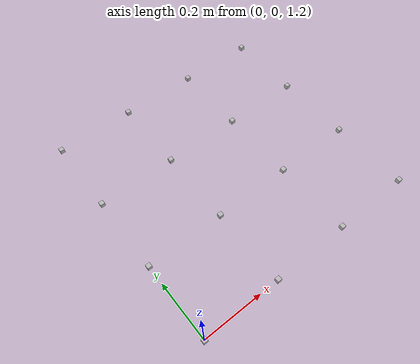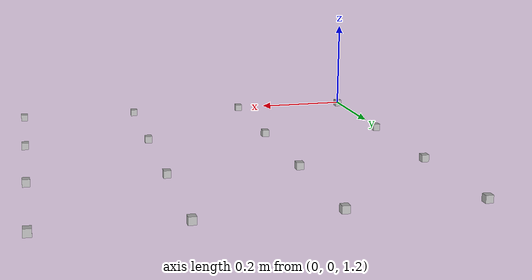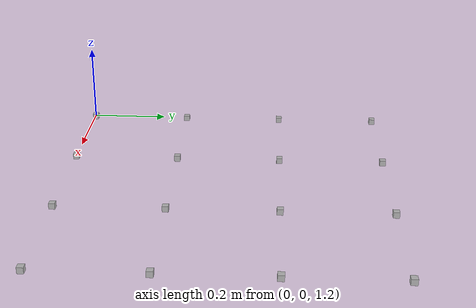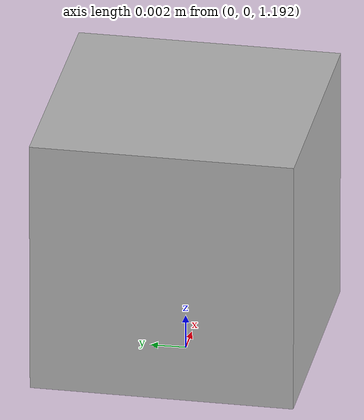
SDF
<sdf version="1.7">
  <model name="spring_damper_mesh">
    <static>false</static>
    <link name="mass_x0_y0">
      <pose>0.0 0.0 1.2 0 0 0</pose>
      <inertial>
        <mass>0.13125</mass>
        <inertia>
          <ixx>1e-5</ixx>
          <ixy>0</ixy>
          <ixz>0</ixz>
          <iyy>1e-5</iyy>
          <iyz>0</iyz>
          <izz>1e-5</izz>
        </inertia>
      </inertial>
      <collision name="collision_x0_y0">
        <geometry>
          <sphere>
            <radius>0.001</radius>
          </sphere>
        </geometry>
      </collision>
      <visual name="visual_x0_y0">
        <geometry>
          <box>
            <size>0.015 0.015 0.015</size>
          </box>
        </geometry>
      </visual>
    </link>
    <link name="mass_x1_y0">
      <pose>0.26666666666666666 0.0 1.2 0 0 0</pose>
      <inertial>
        <mass>0.13125</mass>
        <inertia>
          <ixx>1e-5</ixx>
          <ixy>0</ixy>
          <ixz>0</ixz>
          <iyy>1e-5</iyy>
          <iyz>0</iyz>
          <izz>1e-5</izz>
        </inertia>
      </inertial>
      <collision name="collision_x1_y0">
        <geometry>
          <sphere>
            <radius>0.001</radius>
          </sphere>
        </geometry>
      </collision>
      <visual name="visual_x1_y0">
        <geometry>
          <box>
            <size>0.015 0.015 0.015</size>
          </box>
        </geometry>
      </visual>
    </link>
    <link name="mass_x2_y0">
      <pose>0.5333333333333333 0.0 1.2 0 0 0</pose>
      <inertial>
        <mass>0.13125</mass>
        <inertia>
          <ixx>1e-5</ixx>
          <ixy>0</ixy>
          <ixz>0</ixz>
          <iyy>1e-5</iyy>
          <iyz>0</iyz>
          <izz>1e-5</izz>
        </inertia>
      </inertial>
      <collision name="collision_x2_y0">
        <geometry>
          <sphere>
            <radius>0.001</radius>
          </sphere>
        </geometry>
      </collision>
      <visual name="visual_x2_y0">
        <geometry>
          <box>
            <size>0.015 0.015 0.015</size>
          </box>
        </geometry>
      </visual>
    </link>
    <link name="mass_x3_y0">
      <pose>0.8 0.0 1.2 0 0 0</pose>
      <inertial>
        <mass>0.13125</mass>
        <inertia>
          <ixx>1e-5</ixx>
          <ixy>0</ixy>
          <ixz>0</ixz>
          <iyy>1e-5</iyy>
          <iyz>0</iyz>
          <izz>1e-5</izz>
        </inertia>
      </inertial>
      <collision name="collision_x3_y0">
        <geometry>
          <sphere>
            <radius>0.001</radius>
          </sphere>
        </geometry>
      </collision>
      <visual name="visual_x3_y0">
        <geometry>
          <box>
            <size>0.015 0.015 0.015</size>
          </box>
        </geometry>
      </visual>
    </link>
    <link name="mass_x0_y1">
      <pose>0.0 0.26666666666666666 1.2 0 0 0</pose>
      <inertial>
        <mass>0.13125</mass>
        <inertia>
          <ixx>1e-5</ixx>
          <ixy>0</ixy>
          <ixz>0</ixz>
          <iyy>1e-5</iyy>
          <iyz>0</iyz>
          <izz>1e-5</izz>
        </inertia>
      </inertial>
      <collision name="collision_x0_y1">
        <geometry>
          <sphere>
            <radius>0.001</radius>
          </sphere>
        </geometry>
      </collision>
      <visual name="visual_x0_y1">
        <geometry>
          <box>
            <size>0.015 0.015 0.015</size>
          </box>
        </geometry>
      </visual>
    </link>
    <link name="mass_x1_y1">
      <pose>0.26666666666666666 0.26666666666666666 1.2 0 0 0</pose>
      <inertial>
        <mass>0.13125</mass>
        <inertia>
          <ixx>1e-5</ixx>
          <ixy>0</ixy>
          <ixz>0</ixz>
          <iyy>1e-5</iyy>
          <iyz>0</iyz>
          <izz>1e-5</izz>
        </inertia>
      </inertial>
      <collision name="collision_x1_y1">
        <geometry>
          <sphere>
            <radius>0.001</radius>
          </sphere>
        </geometry>
      </collision>
      <visual name="visual_x1_y1">
        <geometry>
          <box>
            <size>0.015 0.015 0.015</size>
          </box>
        </geometry>
      </visual>
    </link>
    <link name="mass_x2_y1">
      <pose>0.5333333333333333 0.26666666666666666 1.2 0 0 0</pose>
      <inertial>
        <mass>0.13125</mass>
        <inertia>
          <ixx>1e-5</ixx>
          <ixy>0</ixy>
          <ixz>0</ixz>
          <iyy>1e-5</iyy>
          <iyz>0</iyz>
          <izz>1e-5</izz>
        </inertia>
      </inertial>
      <collision name="collision_x2_y1">
        <geometry>
          <sphere>
            <radius>0.001</radius>
          </sphere>
        </geometry>
      </collision>
      <visual name="visual_x2_y1">
        <geometry>
          <box>
            <size>0.015 0.015 0.015</size>
          </box>
        </geometry>
      </visual>
    </link>
    <link name="mass_x3_y1">
      <pose>0.8 0.26666666666666666 1.2 0 0 0</pose>
      <inertial>
        <mass>0.13125</mass>
        <inertia>
          <ixx>1e-5</ixx>
          <ixy>0</ixy>
          <ixz>0</ixz>
          <iyy>1e-5</iyy>
          <iyz>0</iyz>
          <izz>1e-5</izz>
        </inertia>
      </inertial>
      <collision name="collision_x3_y1">
        <geometry>
          <sphere>
            <radius>0.001</radius>
          </sphere>
        </geometry>
      </collision>
      <visual name="visual_x3_y1">
        <geometry>
          <box>
            <size>0.015 0.015 0.015</size>
          </box>
        </geometry>
      </visual>
    </link>
    <link name="mass_x0_y2">
      <pose>0.0 0.5333333333333333 1.2 0 0 0</pose>
      <inertial>
        <mass>0.13125</mass>
        <inertia>
          <ixx>1e-5</ixx>
          <ixy>0</ixy>
          <ixz>0</ixz>
          <iyy>1e-5</iyy>
          <iyz>0</iyz>
          <izz>1e-5</izz>
        </inertia>
      </inertial>
      <collision name="collision_x0_y2">
        <geometry>
          <sphere>
            <radius>0.001</radius>
          </sphere>
        </geometry>
      </collision>
      <visual name="visual_x0_y2">
        <geometry>
          <box>
            <size>0.015 0.015 0.015</size>
          </box>
        </geometry>
      </visual>
    </link>
    <link name="mass_x1_y2">
      <pose>0.26666666666666666 0.5333333333333333 1.2 0 0 0</pose>
      <inertial>
        <mass>0.13125</mass>
        <inertia>
          <ixx>1e-5</ixx>
          <ixy>0</ixy>
          <ixz>0</ixz>
          <iyy>1e-5</iyy>
          <iyz>0</iyz>
          <izz>1e-5</izz>
        </inertia>
      </inertial>
      <collision name="collision_x1_y2">
        <geometry>
          <sphere>
            <radius>0.001</radius>
          </sphere>
        </geometry>
      </collision>
      <visual name="visual_x1_y2">
        <geometry>
          <box>
            <size>0.015 0.015 0.015</size>
          </box>
        </geometry>
      </visual>
    </link>
    <link name="mass_x2_y2">
      <pose>0.5333333333333333 0.5333333333333333 1.2 0 0 0</pose>
      <inertial>
        <mass>0.13125</mass>
        <inertia>
          <ixx>1e-5</ixx>
          <ixy>0</ixy>
          <ixz>0</ixz>
          <iyy>1e-5</iyy>
          <iyz>0</iyz>
          <izz>1e-5</izz>
        </inertia>
      </inertial>
      <collision name="collision_x2_y2">
        <geometry>
          <sphere>
            <radius>0.001</radius>
          </sphere>
        </geometry>
      </collision>
      <visual name="visual_x2_y2">
        <geometry>
          <box>
            <size>0.015 0.015 0.015</size>
          </box>
        </geometry>
      </visual>
    </link>
    <link name="mass_x3_y2">
      <pose>0.8 0.5333333333333333 1.2 0 0 0</pose>
      <inertial>
        <mass>0.13125</mass>
        <inertia>
          <ixx>1e-5</ixx>
          <ixy>0</ixy>
          <ixz>0</ixz>
          <iyy>1e-5</iyy>
          <iyz>0</iyz>
          <izz>1e-5</izz>
        </inertia>
      </inertial>
      <collision name="collision_x3_y2">
        <geometry>
          <sphere>
            <radius>0.001</radius>
          </sphere>
        </geometry>
      </collision>
      <visual name="visual_x3_y2">
        <geometry>
          <box>
            <size>0.015 0.015 0.015</size>
          </box>
        </geometry>
      </visual>
    </link>
    <link name="mass_x0_y3">
      <pose>0.0 0.8 1.2 0 0 0</pose>
      <inertial>
        <mass>0.13125</mass>
        <inertia>
          <ixx>1e-5</ixx>
          <ixy>0</ixy>
          <ixz>0</ixz>
          <iyy>1e-5</iyy>
          <iyz>0</iyz>
          <izz>1e-5</izz>
        </inertia>
      </inertial>
      <collision name="collision_x0_y3">
        <geometry>
          <sphere>
            <radius>0.001</radius>
          </sphere>
        </geometry>
      </collision>
      <visual name="visual_x0_y3">
        <geometry>
          <box>
            <size>0.015 0.015 0.015</size>
          </box>
        </geometry>
      </visual>
    </link>
    <link name="mass_x1_y3">
      <pose>0.26666666666666666 0.8 1.2 0 0 0</pose>
      <inertial>
        <mass>0.13125</mass>
        <inertia>
          <ixx>1e-5</ixx>
          <ixy>0</ixy>
          <ixz>0</ixz>
          <iyy>1e-5</iyy>
          <iyz>0</iyz>
          <izz>1e-5</izz>
        </inertia>
      </inertial>
      <collision name="collision_x1_y3">
        <geometry>
          <sphere>
            <radius>0.001</radius>
          </sphere>
        </geometry>
      </collision>
      <visual name="visual_x1_y3">
        <geometry>
          <box>
            <size>0.015 0.015 0.015</size>
          </box>
        </geometry>
      </visual>
    </link>
    <link name="mass_x2_y3">
      <pose>0.5333333333333333 0.8 1.2 0 0 0</pose>
      <inertial>
        <mass>0.13125</mass>
        <inertia>
          <ixx>1e-5</ixx>
          <ixy>0</ixy>
          <ixz>0</ixz>
          <iyy>1e-5</iyy>
          <iyz>0</iyz>
          <izz>1e-5</izz>
        </inertia>
      </inertial>
      <collision name="collision_x2_y3">
        <geometry>
          <sphere>
            <radius>0.001</radius>
          </sphere>
        </geometry>
      </collision>
      <visual name="visual_x2_y3">
        <geometry>
          <box>
            <size>0.015 0.015 0.015</size>
          </box>
        </geometry>
      </visual>
    </link>
    <link name="mass_x3_y3">
      <pose>0.8 0.8 1.2 0 0 0</pose>
      <inertial>
        <mass>0.13125</mass>
        <inertia>
          <ixx>1e-5</ixx>
          <ixy>0</ixy>
          <ixz>0</ixz>
          <iyy>1e-5</iyy>
          <iyz>0</iyz>
          <izz>1e-5</izz>
        </inertia>
      </inertial>
      <collision name="collision_x3_y3">
        <geometry>
          <sphere>
            <radius>0.001</radius>
          </sphere>
        </geometry>
      </collision>
      <visual name="visual_x3_y3">
        <geometry>
          <box>
            <size>0.015 0.015 0.015</size>
          </box>
        </geometry>
      </visual>
    </link>
    <joint name="N_x0_y0_to_x1_y0" type="ball">
      <parent>mass_x0_y0</parent>
      <child>mass_x1_y0</child>
      <pose relative_to="mass_x1_y0">-0.13333333333333333 0 0 0 0 0</pose>
    </joint>
    <joint name="W_x0_y0_to_x0_y1" type="ball">
      <parent>mass_x0_y0</parent>
      <child>mass_x0_y1</child>
      <pose relative_to="mass_x0_y1">0 -0.13333333333333333 0 0 0 1.5707963267948966</pose>
    </joint>
    <joint name="N_x1_y0_to_x2_y0" type="ball">
      <parent>mass_x1_y0</parent>
      <child>mass_x2_y0</child>
      <pose relative_to="mass_x2_y0">-0.13333333333333333 0 0 0 0 0</pose>
    </joint>
    <joint name="W_x1_y0_to_x1_y1" type="ball">
      <parent>mass_x1_y0</parent>
      <child>mass_x1_y1</child>
      <pose relative_to="mass_x1_y1">0 -0.13333333333333333 0 0 0 1.5707963267948966</pose>
    </joint>
    <joint name="N_x2_y0_to_x3_y0" type="ball">
      <parent>mass_x2_y0</parent>
      <child>mass_x3_y0</child>
      <pose relative_to="mass_x3_y0">-0.13333333333333333 0 0 0 0 0</pose>
    </joint>
    <joint name="W_x2_y0_to_x2_y1" type="ball">
      <parent>mass_x2_y0</parent>
      <child>mass_x2_y1</child>
      <pose relative_to="mass_x2_y1">0 -0.13333333333333333 0 0 0 1.5707963267948966</pose>
    </joint>
    <joint name="W_x3_y0_to_x3_y1" type="ball">
      <parent>mass_x3_y0</parent>
      <child>mass_x3_y1</child>
      <pose relative_to="mass_x3_y1">0 -0.13333333333333333 0 0 0 1.5707963267948966</pose>
    </joint>
    <joint name="N_x0_y1_to_x1_y1" type="ball">
      <parent>mass_x0_y1</parent>
      <child>mass_x1_y1</child>
      <pose relative_to="mass_x1_y1">-0.13333333333333333 0 0 0 0 0</pose>
    </joint>
    <joint name="W_x0_y1_to_x0_y2" type="ball">
      <parent>mass_x0_y1</parent>
      <child>mass_x0_y2</child>
      <pose relative_to="mass_x0_y2">0 -0.13333333333333333 0 0 0 1.5707963267948966</pose>
    </joint>
    <joint name="N_x1_y1_to_x2_y1" type="ball">
      <parent>mass_x1_y1</parent>
      <child>mass_x2_y1</child>
      <pose relative_to="mass_x2_y1">-0.13333333333333333 0 0 0 0 0</pose>
    </joint>
    <joint name="W_x1_y1_to_x1_y2" type="ball">
      <parent>mass_x1_y1</parent>
      <child>mass_x1_y2</child>
      <pose relative_to="mass_x1_y2">0 -0.13333333333333333 0 0 0 1.5707963267948966</pose>
    </joint>
    <joint name="N_x2_y1_to_x3_y1" type="ball">
      <parent>mass_x2_y1</parent>
      <child>mass_x3_y1</child>
      <pose relative_to="mass_x3_y1">-0.13333333333333333 0 0 0 0 0</pose>
    </joint>
    <joint name="W_x2_y1_to_x2_y2" type="ball">
      <parent>mass_x2_y1</parent>
      <child>mass_x2_y2</child>
      <pose relative_to="mass_x2_y2">0 -0.13333333333333333 0 0 0 1.5707963267948966</pose>
    </joint>
    <joint name="W_x3_y1_to_x3_y2" type="ball">
      <parent>mass_x3_y1</parent>
      <child>mass_x3_y2</child>
      <pose relative_to="mass_x3_y2">0 -0.13333333333333333 0 0 0 1.5707963267948966</pose>
    </joint>
    <joint name="N_x0_y2_to_x1_y2" type="ball">
      <parent>mass_x0_y2</parent>
      <child>mass_x1_y2</child>
      <pose relative_to="mass_x1_y2">-0.13333333333333333 0 0 0 0 0</pose>
    </joint>
    <joint name="W_x0_y2_to_x0_y3" type="ball">
      <parent>mass_x0_y2</parent>
      <child>mass_x0_y3</child>
      <pose relative_to="mass_x0_y3">0 -0.13333333333333333 0 0 0 1.5707963267948966</pose>
    </joint>
    <joint name="N_x1_y2_to_x2_y2" type="ball">
      <parent>mass_x1_y2</parent>
      <child>mass_x2_y2</child>
      <pose relative_to="mass_x2_y2">-0.13333333333333333 0 0 0 0 0</pose>
    </joint>
    <joint name="W_x1_y2_to_x1_y3" type="ball">
      <parent>mass_x1_y2</parent>
      <child>mass_x1_y3</child>
      <pose relative_to="mass_x1_y3">0 -0.13333333333333333 0 0 0 1.5707963267948966</pose>
    </joint>
    <joint name="N_x2_y2_to_x3_y2" type="ball">
      <parent>mass_x2_y2</parent>
      <child>mass_x3_y2</child>
      <pose relative_to="mass_x3_y2">-0.13333333333333333 0 0 0 0 0</pose>
    </joint>
    <joint name="W_x2_y2_to_x2_y3" type="ball">
      <parent>mass_x2_y2</parent>
      <child>mass_x2_y3</child>
      <pose relative_to="mass_x2_y3">0 -0.13333333333333333 0 0 0 1.5707963267948966</pose>
    </joint>
    <joint name="W_x3_y2_to_x3_y3" type="ball">
      <parent>mass_x3_y2</parent>
      <child>mass_x3_y3</child>
      <pose relative_to="mass_x3_y3">0 -0.13333333333333333 0 0 0 1.5707963267948966</pose>
    </joint>
    <joint name="N_x0_y3_to_x1_y3" type="ball">
      <parent>mass_x0_y3</parent>
      <child>mass_x1_y3</child>
      <pose relative_to="mass_x1_y3">-0.13333333333333333 0 0 0 0 0</pose>
    </joint>
    <joint name="N_x1_y3_to_x2_y3" type="ball">
      <parent>mass_x1_y3</parent>
      <child>mass_x2_y3</child>
      <pose relative_to="mass_x2_y3">-0.13333333333333333 0 0 0 0 0</pose>
    </joint>
    <joint name="N_x2_y3_to_x3_y3" type="ball">
      <parent>mass_x2_y3</parent>
      <child>mass_x3_y3</child>
      <pose relative_to="mass_x3_y3">-0.13333333333333333 0 0 0 0 0</pose>
    </joint>
  </model>
</sdf>
